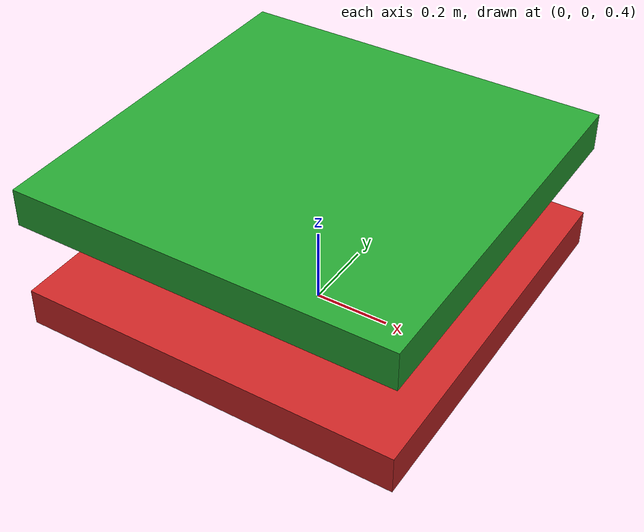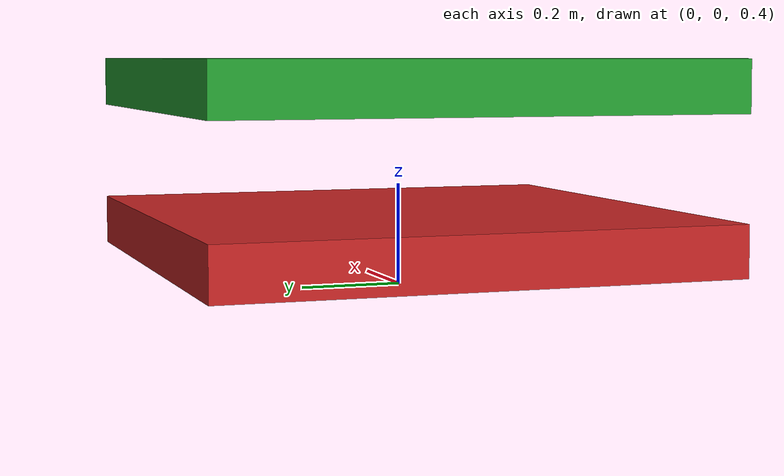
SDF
<?xml version='1.0'?>
<sdf version='1.3'>
    <model name="Joint planes">

    <pose>0 0 0.5 0 0 0</pose>

    <link name="link">

        <self_collide> true </self_collide>

        <collision name="collision">

            <geometry>
                <box>
                    <size> 1 1 0.1 </size>
                </box>
            </geometry>

        </collision>

        <visual name="visual">

            <geometry>
                <box>
                    <size> 1 1 0.1 </size>
                </box>
            </geometry>

            <material>
                <script>
                    <uri>file://media/materials/scripts/gazebo.material</uri>
                    <name>Gazebo/Red</name>
                </script>
            </material>
        </visual>

    </link>

    <link name="link2">

        <self_collide> true </self_collide>

        <pose> 0 0 0.3 0 0 0 </pose>

        <collision name="collisionx">
            <geometry>
                <box>
                    <size> 1 1 0.1 </size>
                </box>
            </geometry>
        </collision>

        <visual name="visualx">
            <geometry>
                <box>
                    <size> 1 1 0.1 </size>
                </box>
            </geometry>
            <material>
                <script>
                    <uri>file://media/materials/scripts/gazebo.material</uri>
                    <name>Gazebo/Green</name>
                </script>
            </material>
        </visual>
    </link>

    <joint type="revolute" name="two_planes">
        <parent> link </parent>
        <child> link2 </child>
        <pose> 0.5 0 0 0 0 0 </pose>
        <axis>
            <xyz> 0 1 0 </xyz>
        </axis>

        <physics>
            <ode>
                <limit>
                    <cfm>0.0</cfm>
                    <erp>0.9</erp>
                </limit>
            </ode>
        </physics>
    </joint>

    </model>
</sdf>
